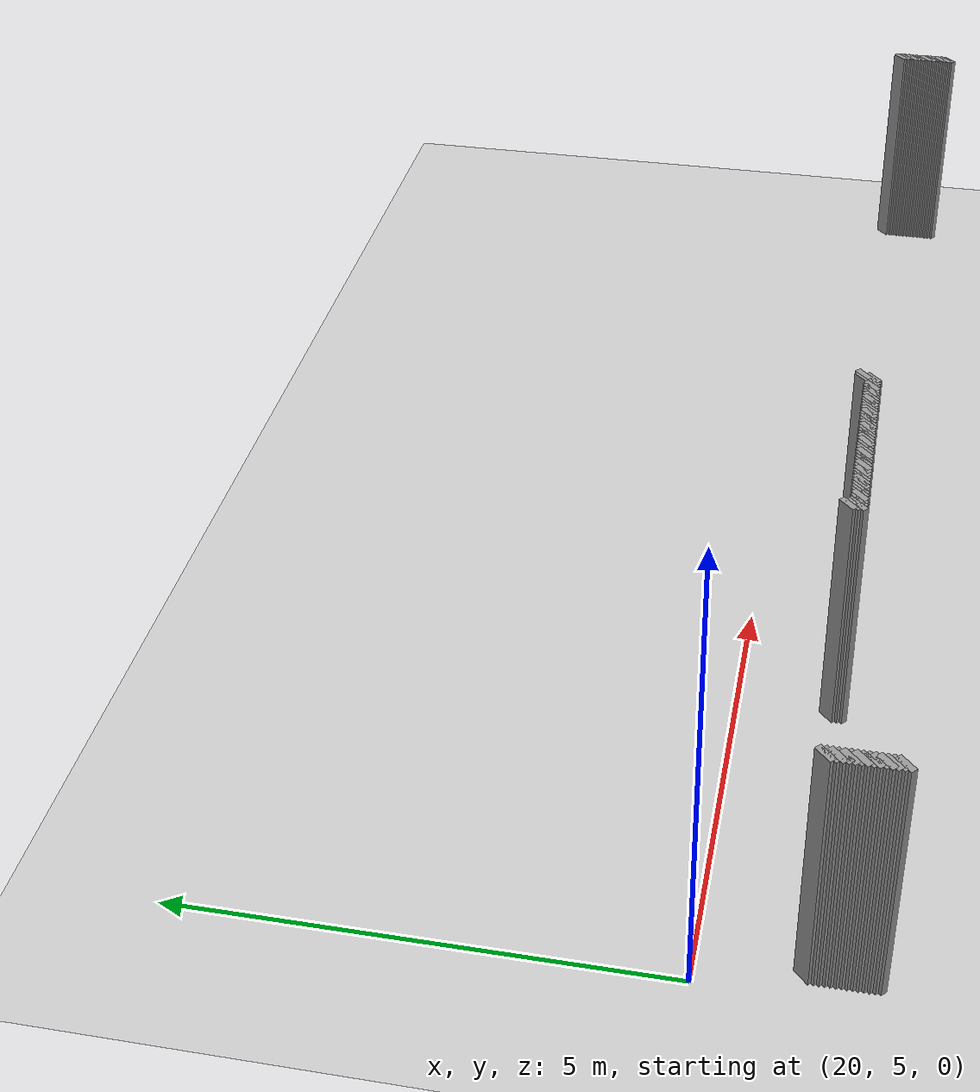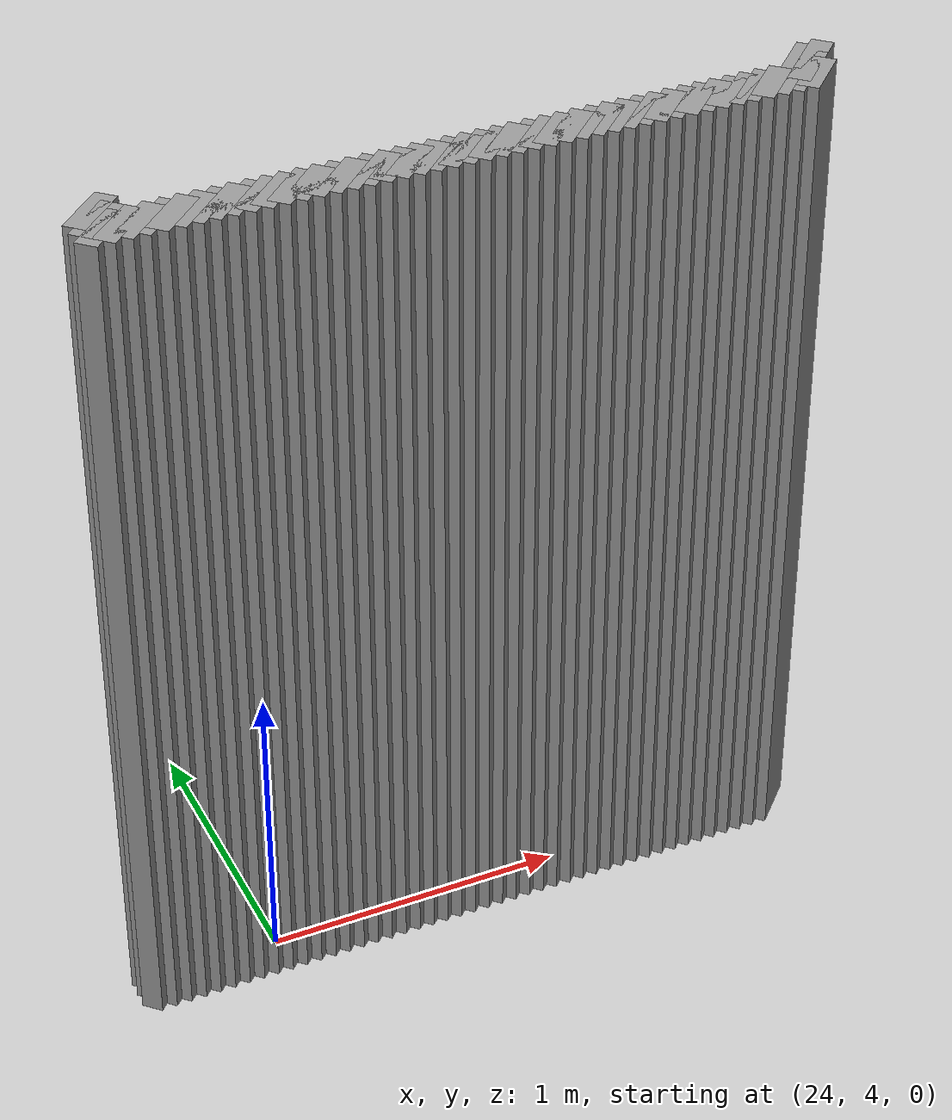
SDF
<sdf version="1.5">
 <world name="default">
  <include><uri>model://ground_plane</uri></include>
  <include><uri>model://sun</uri></include>
  <model name="grey_wall_4885">
   <static>1</static>
   <link name="link">
    <pose>23.6 4.05  1.4 0 0 -0.785398163397</pose>
    <collision name="collision"><geometry><box><size>0.0707106781187 .2  2.8</size></box></geometry></collision>
    <visual name="visual">
     <cast_shadows>0</cast_shadows>
     <geometry><box><size>0.0707106781187 .2  2.8</size></box></geometry>
     <material>
      <script>
       <uri>model://grey_wall/materials/scripts</uri>
       <uri>model://grey_wall/materials/textures</uri>
       <name>vrc/grey_wall</name>
      </script>
     </material>
    </visual>
   </link>
  </model>
  <model name="grey_wall_4886">
   <static>1</static>
   <link name="link">
    <pose>25.8 4.05  1.4 0 0 -0.785398163397</pose>
    <collision name="collision"><geometry><box><size>0.0707106781187 .2  2.8</size></box></geometry></collision>
    <visual name="visual">
     <cast_shadows>0</cast_shadows>
     <geometry><box><size>0.0707106781187 .2  2.8</size></box></geometry>
     <material>
      <script>
       <uri>model://grey_wall/materials/scripts</uri>
       <uri>model://grey_wall/materials/textures</uri>
       <name>vrc/grey_wall</name>
      </script>
     </material>
    </visual>
   </link>
  </model>
  <model name="grey_wall_4887">
   <static>1</static>
   <link name="link">
    <pose>25.85 4.05  1.4 0 0 -0.785398163397</pose>
    <collision name="collision"><geometry><box><size>0.0707106781187 .2  2.8</size></box></geometry></collision>
    <visual name="visual">
     <cast_shadows>0</cast_shadows>
     <geometry><box><size>0.0707106781187 .2  2.8</size></box></geometry>
     <material>
      <script>
       <uri>model://grey_wall/materials/scripts</uri>
       <uri>model://grey_wall/materials/textures</uri>
       <name>vrc/grey_wall</name>
      </script>
     </material>
    </visual>
   </link>
  </model>
  <model name="grey_wall_4888">
   <static>1</static>
   <link name="link">
    <pose>33.95 4.05  1.4 0 0 -0.785398163397</pose>
    <collision name="collision"><geometry><box><size>0.0707106781187 .2  2.8</size></box></geometry></collision>
    <visual name="visual">
     <cast_shadows>0</cast_shadows>
     <geometry><box><size>0.0707106781187 .2  2.8</size></box></geometry>
     <material>
      <script>
       <uri>model://grey_wall/materials/scripts</uri>
       <uri>model://grey_wall/materials/textures</uri>
       <name>vrc/grey_wall</name>
      </script>
     </material>
    </visual>
   </link>
  </model>
  <model name="grey_wall_4889">
   <static>1</static>
   <link name="link">
    <pose>20.25 4.0  1.4 0 0 -0.785398163397</pose>
    <collision name="collision"><geometry><box><size>0.0707106781187 .2  2.8</size></box></geometry></collision>
    <visual name="visual">
     <cast_shadows>0</cast_shadows>
     <geometry><box><size>0.0707106781187 .2  2.8</size></box></geometry>
     <material>
      <script>
       <uri>model://grey_wall/materials/scripts</uri>
       <uri>model://grey_wall/materials/textures</uri>
       <name>vrc/grey_wall</name>
      </script>
     </material>
    </visual>
   </link>
  </model>
  <model name="grey_wall_4890">
   <static>1</static>
   <link name="link">
    <pose>23.6 4.0  1.4 0 0 -0.785398163397</pose>
    <collision name="collision"><geometry><box><size>0.0707106781187 .2  2.8</size></box></geometry></collision>
    <visual name="visual">
     <cast_shadows>0</cast_shadows>
     <geometry><box><size>0.0707106781187 .2  2.8</size></box></geometry>
     <material>
      <script>
       <uri>model://grey_wall/materials/scripts</uri>
       <uri>model://grey_wall/materials/textures</uri>
       <name>vrc/grey_wall</name>
      </script>
     </material>
    </visual>
   </link>
  </model>
  <model name="grey_wall_4891">
   <static>1</static>
   <link name="link">
    <pose>25.8 4.0  1.4 0 0 -0.785398163397</pose>
    <collision name="collision"><geometry><box><size>0.0707106781187 .2  2.8</size></box></geometry></collision>
    <visual name="visual">
     <cast_shadows>0</cast_shadows>
     <geometry><box><size>0.0707106781187 .2  2.8</size></box></geometry>
     <material>
      <script>
       <uri>model://grey_wall/materials/scripts</uri>
       <uri>model://grey_wall/materials/textures</uri>
       <name>vrc/grey_wall</name>
      </script>
     </material>
    </visual>
   </link>
  </model>
  <model name="grey_wall_4892">
   <static>1</static>
   <link name="link">
    <pose>33.95 4.0  1.4 0 0 -0.785398163397</pose>
    <collision name="collision"><geometry><box><size>0.0707106781187 .2  2.8</size></box></geometry></collision>
    <visual name="visual">
     <cast_shadows>0</cast_shadows>
     <geometry><box><size>0.0707106781187 .2  2.8</size></box></geometry>
     <material>
      <script>
       <uri>model://grey_wall/materials/scripts</uri>
       <uri>model://grey_wall/materials/textures</uri>
       <name>vrc/grey_wall</name>
      </script>
     </material>
    </visual>
   </link>
  </model>
  <model name="grey_wall_4893">
   <static>1</static>
   <link name="link">
    <pose>20.25 3.95  1.4 0 0 -0.785398163397</pose>
    <collision name="collision"><geometry><box><size>0.0707106781187 .2  2.8</size></box></geometry></collision>
    <visual name="visual">
     <cast_shadows>0</cast_shadows>
     <geometry><box><size>0.0707106781187 .2  2.8</size></box></geometry>
     <material>
      <script>
       <uri>model://grey_wall/materials/scripts</uri>
       <uri>model://grey_wall/materials/textures</uri>
       <name>vrc/grey_wall</name>
      </script>
     </material>
    </visual>
   </link>
  </model>
  <model name="grey_wall_4894">
   <static>1</static>
   <link name="link">
    <pose>23.6 3.95  1.4 0 0 -0.785398163397</pose>
    <collision name="collision"><geometry><box><size>0.0707106781187 .2  2.8</size></box></geometry></collision>
    <visual name="visual">
     <cast_shadows>0</cast_shadows>
     <geometry><box><size>0.0707106781187 .2  2.8</size></box></geometry>
     <material>
      <script>
       <uri>model://grey_wall/materials/scripts</uri>
       <uri>model://grey_wall/materials/textures</uri>
       <name>vrc/grey_wall</name>
      </script>
     </material>
    </visual>
   </link>
  </model>
  <model name="grey_wall_4895">
   <static>1</static>
   <link name="link">
    <pose>23.65 3.95  1.4 0 0 -0.785398163397</pose>
    <collision name="collision"><geometry><box><size>0.0707106781187 .2  2.8</size></box></geometry></collision>
    <visual name="visual">
     <cast_shadows>0</cast_shadows>
     <geometry><box><size>0.0707106781187 .2  2.8</size></box></geometry>
     <material>
      <script>
       <uri>model://grey_wall/materials/scripts</uri>
       <uri>model://grey_wall/materials/textures</uri>
       <name>vrc/grey_wall</name>
      </script>
     </material>
    </visual>
   </link>
  </model>
  <model name="grey_wall_4896">
   <static>1</static>
   <link name="link">
    <pose>23.7 3.95  1.4 0 0 -0.785398163397</pose>
    <collision name="collision"><geometry><box><size>0.0707106781187 .2  2.8</size></box></geometry></collision>
    <visual name="visual">
     <cast_shadows>0</cast_shadows>
     <geometry><box><size>0.0707106781187 .2  2.8</size></box></geometry>
     <material>
      <script>
       <uri>model://grey_wall/materials/scripts</uri>
       <uri>model://grey_wall/materials/textures</uri>
       <name>vrc/grey_wall</name>
      </script>
     </material>
    </visual>
   </link>
  </model>
  <model name="grey_wall_4897">
   <static>1</static>
   <link name="link">
    <pose>23.75 3.95  1.4 0 0 -0.785398163397</pose>
    <collision name="collision"><geometry><box><size>0.0707106781187 .2  2.8</size></box></geometry></collision>
    <visual name="visual">
     <cast_shadows>0</cast_shadows>
     <geometry><box><size>0.0707106781187 .2  2.8</size></box></geometry>
     <material>
      <script>
       <uri>model://grey_wall/materials/scripts</uri>
       <uri>model://grey_wall/materials/textures</uri>
       <name>vrc/grey_wall</name>
      </script>
     </material>
    </visual>
   </link>
  </model>
  <model name="grey_wall_4898">
   <static>1</static>
   <link name="link">
    <pose>23.8 3.95  1.4 0 0 -0.785398163397</pose>
    <collision name="collision"><geometry><box><size>0.0707106781187 .2  2.8</size></box></geometry></collision>
    <visual name="visual">
     <cast_shadows>0</cast_shadows>
     <geometry><box><size>0.0707106781187 .2  2.8</size></box></geometry>
     <material>
      <script>
       <uri>model://grey_wall/materials/scripts</uri>
       <uri>model://grey_wall/materials/textures</uri>
       <name>vrc/grey_wall</name>
      </script>
     </material>
    </visual>
   </link>
  </model>
  <model name="grey_wall_4899">
   <static>1</static>
   <link name="link">
    <pose>23.85 3.95  1.4 0 0 -0.785398163397</pose>
    <collision name="collision"><geometry><box><size>0.0707106781187 .2  2.8</size></box></geometry></collision>
    <visual name="visual">
     <cast_shadows>0</cast_shadows>
     <geometry><box><size>0.0707106781187 .2  2.8</size></box></geometry>
     <material>
      <script>
       <uri>model://grey_wall/materials/scripts</uri>
       <uri>model://grey_wall/materials/textures</uri>
       <name>vrc/grey_wall</name>
      </script>
     </material>
    </visual>
   </link>
  </model>
  <model name="grey_wall_4900">
   <static>1</static>
   <link name="link">
    <pose>23.9 3.95  1.4 0 0 -0.785398163397</pose>
    <collision name="collision"><geometry><box><size>0.0707106781187 .2  2.8</size></box></geometry></collision>
    <visual name="visual">
     <cast_shadows>0</cast_shadows>
     <geometry><box><size>0.0707106781187 .2  2.8</size></box></geometry>
     <material>
      <script>
       <uri>model://grey_wall/materials/scripts</uri>
       <uri>model://grey_wall/materials/textures</uri>
       <name>vrc/grey_wall</name>
      </script>
     </material>
    </visual>
   </link>
  </model>
  <model name="grey_wall_4901">
   <static>1</static>
   <link name="link">
    <pose>23.95 3.95  1.4 0 0 -0.785398163397</pose>
    <collision name="collision"><geometry><box><size>0.0707106781187 .2  2.8</size></box></geometry></collision>
    <visual name="visual">
     <cast_shadows>0</cast_shadows>
     <geometry><box><size>0.0707106781187 .2  2.8</size></box></geometry>
     <material>
      <script>
       <uri>model://grey_wall/materials/scripts</uri>
       <uri>model://grey_wall/materials/textures</uri>
       <name>vrc/grey_wall</name>
      </script>
     </material>
    </visual>
   </link>
  </model>
  <model name="grey_wall_4902">
   <static>1</static>
   <link name="link">
    <pose>24.0 3.95  1.4 0 0 -0.785398163397</pose>
    <collision name="collision"><geometry><box><size>0.0707106781187 .2  2.8</size></box></geometry></collision>
    <visual name="visual">
     <cast_shadows>0</cast_shadows>
     <geometry><box><size>0.0707106781187 .2  2.8</size></box></geometry>
     <material>
      <script>
       <uri>model://grey_wall/materials/scripts</uri>
       <uri>model://grey_wall/materials/textures</uri>
       <name>vrc/grey_wall</name>
      </script>
     </material>
    </visual>
   </link>
  </model>
  <model name="grey_wall_4903">
   <static>1</static>
   <link name="link">
    <pose>24.05 3.95  1.4 0 0 -0.785398163397</pose>
    <collision name="collision"><geometry><box><size>0.0707106781187 .2  2.8</size></box></geometry></collision>
    <visual name="visual">
     <cast_shadows>0</cast_shadows>
     <geometry><box><size>0.0707106781187 .2  2.8</size></box></geometry>
     <material>
      <script>
       <uri>model://grey_wall/materials/scripts</uri>
       <uri>model://grey_wall/materials/textures</uri>
       <name>vrc/grey_wall</name>
      </script>
     </material>
    </visual>
   </link>
  </model>
  <model name="grey_wall_4904">
   <static>1</static>
   <link name="link">
    <pose>24.1 3.95  1.4 0 0 -0.785398163397</pose>
    <collision name="collision"><geometry><box><size>0.0707106781187 .2  2.8</size></box></geometry></collision>
    <visual name="visual">
     <cast_shadows>0</cast_shadows>
     <geometry><box><size>0.0707106781187 .2  2.8</size></box></geometry>
     <material>
      <script>
       <uri>model://grey_wall/materials/scripts</uri>
       <uri>model://grey_wall/materials/textures</uri>
       <name>vrc/grey_wall</name>
      </script>
     </material>
    </visual>
   </link>
  </model>
  <model name="grey_wall_4905">
   <static>1</static>
   <link name="link">
    <pose>24.15 3.95  1.4 0 0 -0.785398163397</pose>
    <collision name="collision"><geometry><box><size>0.0707106781187 .2  2.8</size></box></geometry></collision>
    <visual name="visual">
     <cast_shadows>0</cast_shadows>
     <geometry><box><size>0.0707106781187 .2  2.8</size></box></geometry>
     <material>
      <script>
       <uri>model://grey_wall/materials/scripts</uri>
       <uri>model://grey_wall/materials/textures</uri>
       <name>vrc/grey_wall</name>
      </script>
     </material>
    </visual>
   </link>
  </model>
  <model name="grey_wall_4906">
   <static>1</static>
   <link name="link">
    <pose>24.2 3.95  1.4 0 0 -0.785398163397</pose>
    <collision name="collision"><geometry><box><size>0.0707106781187 .2  2.8</size></box></geometry></collision>
    <visual name="visual">
     <cast_shadows>0</cast_shadows>
     <geometry><box><size>0.0707106781187 .2  2.8</size></box></geometry>
     <material>
      <script>
       <uri>model://grey_wall/materials/scripts</uri>
       <uri>model://grey_wall/materials/textures</uri>
       <name>vrc/grey_wall</name>
      </script>
     </material>
    </visual>
   </link>
  </model>
  <model name="grey_wall_4907">
   <static>1</static>
   <link name="link">
    <pose>24.25 3.95  1.4 0 0 -0.785398163397</pose>
    <collision name="collision"><geometry><box><size>0.0707106781187 .2  2.8</size></box></geometry></collision>
    <visual name="visual">
     <cast_shadows>0</cast_shadows>
     <geometry><box><size>0.0707106781187 .2  2.8</size></box></geometry>
     <material>
      <script>
       <uri>model://grey_wall/materials/scripts</uri>
       <uri>model://grey_wall/materials/textures</uri>
       <name>vrc/grey_wall</name>
      </script>
     </material>
    </visual>
   </link>
  </model>
  <model name="grey_wall_4908">
   <static>1</static>
   <link name="link">
    <pose>24.3 3.95  1.4 0 0 -0.785398163397</pose>
    <collision name="collision"><geometry><box><size>0.0707106781187 .2  2.8</size></box></geometry></collision>
    <visual name="visual">
     <cast_shadows>0</cast_shadows>
     <geometry><box><size>0.0707106781187 .2  2.8</size></box></geometry>
     <material>
      <script>
       <uri>model://grey_wall/materials/scripts</uri>
       <uri>model://grey_wall/materials/textures</uri>
       <name>vrc/grey_wall</name>
      </script>
     </material>
    </visual>
   </link>
  </model>
  <model name="grey_wall_4909">
   <static>1</static>
   <link name="link">
    <pose>24.35 3.95  1.4 0 0 -0.785398163397</pose>
    <collision name="collision"><geometry><box><size>0.0707106781187 .2  2.8</size></box></geometry></collision>
    <visual name="visual">
     <cast_shadows>0</cast_shadows>
     <geometry><box><size>0.0707106781187 .2  2.8</size></box></geometry>
     <material>
      <script>
       <uri>model://grey_wall/materials/scripts</uri>
       <uri>model://grey_wall/materials/textures</uri>
       <name>vrc/grey_wall</name>
      </script>
     </material>
    </visual>
   </link>
  </model>
  <model name="grey_wall_4910">
   <static>1</static>
   <link name="link">
    <pose>24.4 3.95  1.4 0 0 -0.785398163397</pose>
    <collision name="collision"><geometry><box><size>0.0707106781187 .2  2.8</size></box></geometry></collision>
    <visual name="visual">
     <cast_shadows>0</cast_shadows>
     <geometry><box><size>0.0707106781187 .2  2.8</size></box></geometry>
     <material>
      <script>
       <uri>model://grey_wall/materials/scripts</uri>
       <uri>model://grey_wall/materials/textures</uri>
       <name>vrc/grey_wall</name>
      </script>
     </material>
    </visual>
   </link>
  </model>
  <model name="grey_wall_4911">
   <static>1</static>
   <link name="link">
    <pose>24.45 3.95  1.4 0 0 -0.785398163397</pose>
    <collision name="collision"><geometry><box><size>0.0707106781187 .2  2.8</size></box></geometry></collision>
    <visual name="visual">
     <cast_shadows>0</cast_shadows>
     <geometry><box><size>0.0707106781187 .2  2.8</size></box></geometry>
     <material>
      <script>
       <uri>model://grey_wall/materials/scripts</uri>
       <uri>model://grey_wall/materials/textures</uri>
       <name>vrc/grey_wall</name>
      </script>
     </material>
    </visual>
   </link>
  </model>
  <model name="grey_wall_4912">
   <static>1</static>
   <link name="link">
    <pose>24.5 3.95  1.4 0 0 -0.785398163397</pose>
    <collision name="collision"><geometry><box><size>0.0707106781187 .2  2.8</size></box></geometry></collision>
    <visual name="visual">
     <cast_shadows>0</cast_shadows>
     <geometry><box><size>0.0707106781187 .2  2.8</size></box></geometry>
     <material>
      <script>
       <uri>model://grey_wall/materials/scripts</uri>
       <uri>model://grey_wall/materials/textures</uri>
       <name>vrc/grey_wall</name>
      </script>
     </material>
    </visual>
   </link>
  </model>
  <model name="grey_wall_4913">
   <static>1</static>
   <link name="link">
    <pose>24.55 3.95  1.4 0 0 -0.785398163397</pose>
    <collision name="collision"><geometry><box><size>0.0707106781187 .2  2.8</size></box></geometry></collision>
    <visual name="visual">
     <cast_shadows>0</cast_shadows>
     <geometry><box><size>0.0707106781187 .2  2.8</size></box></geometry>
     <material>
      <script>
       <uri>model://grey_wall/materials/scripts</uri>
       <uri>model://grey_wall/materials/textures</uri>
       <name>vrc/grey_wall</name>
      </script>
     </material>
    </visual>
   </link>
  </model>
  <model name="grey_wall_4914">
   <static>1</static>
   <link name="link">
    <pose>24.6 3.95  1.4 0 0 -0.785398163397</pose>
    <collision name="collision"><geometry><box><size>0.0707106781187 .2  2.8</size></box></geometry></collision>
    <visual name="visual">
     <cast_shadows>0</cast_shadows>
     <geometry><box><size>0.0707106781187 .2  2.8</size></box></geometry>
     <material>
      <script>
       <uri>model://grey_wall/materials/scripts</uri>
       <uri>model://grey_wall/materials/textures</uri>
       <name>vrc/grey_wall</name>
      </script>
     </material>
    </visual>
   </link>
  </model>
  <model name="grey_wall_4915">
   <static>1</static>
   <link name="link">
    <pose>24.65 3.95  1.4 0 0 -0.785398163397</pose>
    <collision name="collision"><geometry><box><size>0.0707106781187 .2  2.8</size></box></geometry></collision>
    <visual name="visual">
     <cast_shadows>0</cast_shadows>
     <geometry><box><size>0.0707106781187 .2  2.8</size></box></geometry>
     <material>
      <script>
       <uri>model://grey_wall/materials/scripts</uri>
       <uri>model://grey_wall/materials/textures</uri>
       <name>vrc/grey_wall</name>
      </script>
     </material>
    </visual>
   </link>
  </model>
  <model name="grey_wall_4916">
   <static>1</static>
   <link name="link">
    <pose>24.7 3.95  1.4 0 0 -0.785398163397</pose>
    <collision name="collision"><geometry><box><size>0.0707106781187 .2  2.8</size></box></geometry></collision>
    <visual name="visual">
     <cast_shadows>0</cast_shadows>
     <geometry><box><size>0.0707106781187 .2  2.8</size></box></geometry>
     <material>
      <script>
       <uri>model://grey_wall/materials/scripts</uri>
       <uri>model://grey_wall/materials/textures</uri>
       <name>vrc/grey_wall</name>
      </script>
     </material>
    </visual>
   </link>
  </model>
  <model name="grey_wall_4917">
   <static>1</static>
   <link name="link">
    <pose>24.75 3.95  1.4 0 0 -0.785398163397</pose>
    <collision name="collision"><geometry><box><size>0.0707106781187 .2  2.8</size></box></geometry></collision>
    <visual name="visual">
     <cast_shadows>0</cast_shadows>
     <geometry><box><size>0.0707106781187 .2  2.8</size></box></geometry>
     <material>
      <script>
       <uri>model://grey_wall/materials/scripts</uri>
       <uri>model://grey_wall/materials/textures</uri>
       <name>vrc/grey_wall</name>
      </script>
     </material>
    </visual>
   </link>
  </model>
  <model name="grey_wall_4918">
   <static>1</static>
   <link name="link">
    <pose>24.8 3.95  1.4 0 0 -0.785398163397</pose>
    <collision name="collision"><geometry><box><size>0.0707106781187 .2  2.8</size></box></geometry></collision>
    <visual name="visual">
     <cast_shadows>0</cast_shadows>
     <geometry><box><size>0.0707106781187 .2  2.8</size></box></geometry>
     <material>
      <script>
       <uri>model://grey_wall/materials/scripts</uri>
       <uri>model://grey_wall/materials/textures</uri>
       <name>vrc/grey_wall</name>
      </script>
     </material>
    </visual>
   </link>
  </model>
  <model name="grey_wall_4919">
   <static>1</static>
   <link name="link">
    <pose>24.85 3.95  1.4 0 0 -0.785398163397</pose>
    <collision name="collision"><geometry><box><size>0.0707106781187 .2  2.8</size></box></geometry></collision>
    <visual name="visual">
     <cast_shadows>0</cast_shadows>
     <geometry><box><size>0.0707106781187 .2  2.8</size></box></geometry>
     <material>
      <script>
       <uri>model://grey_wall/materials/scripts</uri>
       <uri>model://grey_wall/materials/textures</uri>
       <name>vrc/grey_wall</name>
      </script>
     </material>
    </visual>
   </link>
  </model>
  <model name="grey_wall_4920">
   <static>1</static>
   <link name="link">
    <pose>24.9 3.95  1.4 0 0 -0.785398163397</pose>
    <collision name="collision"><geometry><box><size>0.0707106781187 .2  2.8</size></box></geometry></collision>
    <visual name="visual">
     <cast_shadows>0</cast_shadows>
     <geometry><box><size>0.0707106781187 .2  2.8</size></box></geometry>
     <material>
      <script>
       <uri>model://grey_wall/materials/scripts</uri>
       <uri>model://grey_wall/materials/textures</uri>
       <name>vrc/grey_wall</name>
      </script>
     </material>
    </visual>
   </link>
  </model>
  <model name="grey_wall_4921">
   <static>1</static>
   <link name="link">
    <pose>24.95 3.95  1.4 0 0 -0.785398163397</pose>
    <collision name="collision"><geometry><box><size>0.0707106781187 .2  2.8</size></box></geometry></collision>
    <visual name="visual">
     <cast_shadows>0</cast_shadows>
     <geometry><box><size>0.0707106781187 .2  2.8</size></box></geometry>
     <material>
      <script>
       <uri>model://grey_wall/materials/scripts</uri>
       <uri>model://grey_wall/materials/textures</uri>
       <name>vrc/grey_wall</name>
      </script>
     </material>
    </visual>
   </link>
  </model>
  <model name="grey_wall_4922">
   <static>1</static>
   <link name="link">
    <pose>25.0 3.95  1.4 0 0 -0.785398163397</pose>
    <collision name="collision"><geometry><box><size>0.0707106781187 .2  2.8</size></box></geometry></collision>
    <visual name="visual">
     <cast_shadows>0</cast_shadows>
     <geometry><box><size>0.0707106781187 .2  2.8</size></box></geometry>
     <material>
      <script>
       <uri>model://grey_wall/materials/scripts</uri>
       <uri>model://grey_wall/materials/textures</uri>
       <name>vrc/grey_wall</name>
      </script>
     </material>
    </visual>
   </link>
  </model>
  <model name="grey_wall_4923">
   <static>1</static>
   <link name="link">
    <pose>25.05 3.95  1.4 0 0 -0.785398163397</pose>
    <collision name="collision"><geometry><box><size>0.0707106781187 .2  2.8</size></box></geometry></collision>
    <visual name="visual">
     <cast_shadows>0</cast_shadows>
     <geometry><box><size>0.0707106781187 .2  2.8</size></box></geometry>
     <material>
      <script>
       <uri>model://grey_wall/materials/scripts</uri>
       <uri>model://grey_wall/materials/textures</uri>
       <name>vrc/grey_wall</name>
      </script>
     </material>
    </visual>
   </link>
  </model>
  <model name="grey_wall_4924">
   <static>1</static>
   <link name="link">
    <pose>25.1 3.95  1.4 0 0 -0.785398163397</pose>
    <collision name="collision"><geometry><box><size>0.0707106781187 .2  2.8</size></box></geometry></collision>
    <visual name="visual">
     <cast_shadows>0</cast_shadows>
     <geometry><box><size>0.0707106781187 .2  2.8</size></box></geometry>
     <material>
      <script>
       <uri>model://grey_wall/materials/scripts</uri>
       <uri>model://grey_wall/materials/textures</uri>
       <name>vrc/grey_wall</name>
      </script>
     </material>
    </visual>
   </link>
  </model>
  <model name="grey_wall_4925">
   <static>1</static>
   <link name="link">
    <pose>25.15 3.95  1.4 0 0 -0.785398163397</pose>
    <collision name="collision"><geometry><box><size>0.0707106781187 .2  2.8</size></box></geometry></collision>
    <visual name="visual">
     <cast_shadows>0</cast_shadows>
     <geometry><box><size>0.0707106781187 .2  2.8</size></box></geometry>
     <material>
      <script>
       <uri>model://grey_wall/materials/scripts</uri>
       <uri>model://grey_wall/materials/textures</uri>
       <name>vrc/grey_wall</name>
      </script>
     </material>
    </visual>
   </link>
  </model>
  <model name="grey_wall_4926">
   <static>1</static>
   <link name="link">
    <pose>25.2 3.95  1.4 0 0 -0.785398163397</pose>
    <collision name="collision"><geometry><box><size>0.0707106781187 .2  2.8</size></box></geometry></collision>
    <visual name="visual">
     <cast_shadows>0</cast_shadows>
     <geometry><box><size>0.0707106781187 .2  2.8</size></box></geometry>
     <material>
      <script>
       <uri>model://grey_wall/materials/scripts</uri>
       <uri>model://grey_wall/materials/textures</uri>
       <name>vrc/grey_wall</name>
      </script>
     </material>
    </visual>
   </link>
  </model>
  <model name="grey_wall_4927">
   <static>1</static>
   <link name="link">
    <pose>25.25 3.95  1.4 0 0 -0.785398163397</pose>
    <collision name="collision"><geometry><box><size>0.0707106781187 .2  2.8</size></box></geometry></collision>
    <visual name="visual">
     <cast_shadows>0</cast_shadows>
     <geometry><box><size>0.0707106781187 .2  2.8</size></box></geometry>
     <material>
      <script>
       <uri>model://grey_wall/materials/scripts</uri>
       <uri>model://grey_wall/materials/textures</uri>
       <name>vrc/grey_wall</name>
      </script>
     </material>
    </visual>
   </link>
  </model>
  <model name="grey_wall_4928">
   <static>1</static>
   <link name="link">
    <pose>25.3 3.95  1.4 0 0 -0.785398163397</pose>
    <collision name="collision"><geometry><box><size>0.0707106781187 .2  2.8</size></box></geometry></collision>
    <visual name="visual">
     <cast_shadows>0</cast_shadows>
     <geometry><box><size>0.0707106781187 .2  2.8</size></box></geometry>
     <material>
      <script>
       <uri>model://grey_wall/materials/scripts</uri>
       <uri>model://grey_wall/materials/textures</uri>
       <name>vrc/grey_wall</name>
      </script>
     </material>
    </visual>
   </link>
  </model>
  <model name="grey_wall_4929">
   <static>1</static>
   <link name="link">
    <pose>25.35 3.95  1.4 0 0 -0.785398163397</pose>
    <collision name="collision"><geometry><box><size>0.0707106781187 .2  2.8</size></box></geometry></collision>
    <visual name="visual">
     <cast_shadows>0</cast_shadows>
     <geometry><box><size>0.0707106781187 .2  2.8</size></box></geometry>
     <material>
      <script>
       <uri>model://grey_wall/materials/scripts</uri>
       <uri>model://grey_wall/materials/textures</uri>
       <name>vrc/grey_wall</name>
      </script>
     </material>
    </visual>
   </link>
  </model>
  <model name="grey_wall_4930">
   <static>1</static>
   <link name="link">
    <pose>25.4 3.95  1.4 0 0 -0.785398163397</pose>
    <collision name="collision"><geometry><box><size>0.0707106781187 .2  2.8</size></box></geometry></collision>
    <visual name="visual">
     <cast_shadows>0</cast_shadows>
     <geometry><box><size>0.0707106781187 .2  2.8</size></box></geometry>
     <material>
      <script>
       <uri>model://grey_wall/materials/scripts</uri>
       <uri>model://grey_wall/materials/textures</uri>
       <name>vrc/grey_wall</name>
      </script>
     </material>
    </visual>
   </link>
  </model>
  <model name="grey_wall_4931">
   <static>1</static>
   <link name="link">
    <pose>25.45 3.95  1.4 0 0 -0.785398163397</pose>
    <collision name="collision"><geometry><box><size>0.0707106781187 .2  2.8</size></box></geometry></collision>
    <visual name="visual">
     <cast_shadows>0</cast_shadows>
     <geometry><box><size>0.0707106781187 .2  2.8</size></box></geometry>
     <material>
      <script>
       <uri>model://grey_wall/materials/scripts</uri>
       <uri>model://grey_wall/materials/textures</uri>
       <name>vrc/grey_wall</name>
      </script>
     </material>
    </visual>
   </link>
  </model>
  <model name="grey_wall_4932">
   <static>1</static>
   <link name="link">
    <pose>25.5 3.95  1.4 0 0 -0.785398163397</pose>
    <collision name="collision"><geometry><box><size>0.0707106781187 .2  2.8</size></box></geometry></collision>
    <visual name="visual">
     <cast_shadows>0</cast_shadows>
     <geometry><box><size>0.0707106781187 .2  2.8</size></box></geometry>
     <material>
      <script>
       <uri>model://grey_wall/materials/scripts</uri>
       <uri>model://grey_wall/materials/textures</uri>
       <name>vrc/grey_wall</name>
      </script>
     </material>
    </visual>
   </link>
  </model>
  <model name="grey_wall_4933">
   <static>1</static>
   <link name="link">
    <pose>25.55 3.95  1.4 0 0 -0.785398163397</pose>
    <collision name="collision"><geometry><box><size>0.0707106781187 .2  2.8</size></box></geometry></collision>
    <visual name="visual">
     <cast_shadows>0</cast_shadows>
     <geometry><box><size>0.0707106781187 .2  2.8</size></box></geometry>
     <material>
      <script>
       <uri>model://grey_wall/materials/scripts</uri>
       <uri>model://grey_wall/materials/textures</uri>
       <name>vrc/grey_wall</name>
      </script>
     </material>
    </visual>
   </link>
  </model>
  <model name="grey_wall_4934">
   <static>1</static>
   <link name="link">
    <pose>25.6 3.95  1.4 0 0 -0.785398163397</pose>
    <collision name="collision"><geometry><box><size>0.0707106781187 .2  2.8</size></box></geometry></collision>
    <visual name="visual">
     <cast_shadows>0</cast_shadows>
     <geometry><box><size>0.0707106781187 .2  2.8</size></box></geometry>
     <material>
      <script>
       <uri>model://grey_wall/materials/scripts</uri>
       <uri>model://grey_wall/materials/textures</uri>
       <name>vrc/grey_wall</name>
      </script>
     </material>
    </visual>
   </link>
  </model>
  <model name="grey_wall_4935">
   <static>1</static>
   <link name="link">
    <pose>25.65 3.95  1.4 0 0 -0.785398163397</pose>
    <collision name="collision"><geometry><box><size>0.0707106781187 .2  2.8</size></box></geometry></collision>
    <visual name="visual">
     <cast_shadows>0</cast_shadows>
     <geometry><box><size>0.0707106781187 .2  2.8</size></box></geometry>
     <material>
      <script>
       <uri>model://grey_wall/materials/scripts</uri>
       <uri>model://grey_wall/materials/textures</uri>
       <name>vrc/grey_wall</name>
      </script>
     </material>
    </visual>
   </link>
  </model>
  <model name="grey_wall_4936">
   <static>1</static>
   <link name="link">
    <pose>25.7 3.95  1.4 0 0 -0.785398163397</pose>
    <collision name="collision"><geometry><box><size>0.0707106781187 .2  2.8</size></box></geometry></collision>
    <visual name="visual">
     <cast_shadows>0</cast_shadows>
     <geometry><box><size>0.0707106781187 .2  2.8</size></box></geometry>
     <material>
      <script>
       <uri>model://grey_wall/materials/scripts</uri>
       <uri>model://grey_wall/materials/textures</uri>
       <name>vrc/grey_wall</name>
      </script>
     </material>
    </visual>
   </link>
  </model>
  <model name="grey_wall_4937">
   <static>1</static>
   <link name="link">
    <pose>25.75 3.95  1.4 0 0 -0.785398163397</pose>
    <collision name="collision"><geometry><box><size>0.0707106781187 .2  2.8</size></box></geometry></collision>
    <visual name="visual">
     <cast_shadows>0</cast_shadows>
     <geometry><box><size>0.0707106781187 .2  2.8</size></box></geometry>
     <material>
      <script>
       <uri>model://grey_wall/materials/scripts</uri>
       <uri>model://grey_wall/materials/textures</uri>
       <name>vrc/grey_wall</name>
      </script>
     </material>
    </visual>
   </link>
  </model>
  <model name="grey_wall_4938">
   <static>1</static>
   <link name="link">
    <pose>25.8 3.95  1.4 0 0 -0.785398163397</pose>
    <collision name="collision"><geometry><box><size>0.0707106781187 .2  2.8</size></box></geometry></collision>
    <visual name="visual">
     <cast_shadows>0</cast_shadows>
     <geometry><box><size>0.0707106781187 .2  2.8</size></box></geometry>
     <material>
      <script>
       <uri>model://grey_wall/materials/scripts</uri>
       <uri>model://grey_wall/materials/textures</uri>
       <name>vrc/grey_wall</name>
      </script>
     </material>
    </visual>
   </link>
  </model>
  <model name="grey_wall_4939">
   <static>1</static>
   <link name="link">
    <pose>33.95 3.95  1.4 0 0 -0.785398163397</pose>
    <collision name="collision"><geometry><box><size>0.0707106781187 .2  2.8</size></box></geometry></collision>
    <visual name="visual">
     <cast_shadows>0</cast_shadows>
     <geometry><box><size>0.0707106781187 .2  2.8</size></box></geometry>
     <material>
      <script>
       <uri>model://grey_wall/materials/scripts</uri>
       <uri>model://grey_wall/materials/textures</uri>
       <name>vrc/grey_wall</name>
      </script>
     </material>
    </visual>
   </link>
  </model>
  <model name="grey_wall_4940">
   <static>1</static>
   <link name="link">
    <pose>20.25 3.9  1.4 0 0 -0.785398163397</pose>
    <collision name="collision"><geometry><box><size>0.0707106781187 .2  2.8</size></box></geometry></collision>
    <visual name="visual">
     <cast_shadows>0</cast_shadows>
     <geometry><box><size>0.0707106781187 .2  2.8</size></box></geometry>
     <material>
      <script>
       <uri>model://grey_wall/materials/scripts</uri>
       <uri>model://grey_wall/materials/textures</uri>
       <name>vrc/grey_wall</name>
      </script>
     </material>
    </visual>
   </link>
  </model>
  <model name="grey_wall_4941">
   <static>1</static>
   <link name="link">
    <pose>33.95 3.9  1.4 0 0 -0.785398163397</pose>
    <collision name="collision"><geometry><box><size>0.0707106781187 .2  2.8</size></box></geometry></collision>
    <visual name="visual">
     <cast_shadows>0</cast_shadows>
     <geometry><box><size>0.0707106781187 .2  2.8</size></box></geometry>
     <material>
      <script>
       <uri>model://grey_wall/materials/scripts</uri>
       <uri>model://grey_wall/materials/textures</uri>
       <name>vrc/grey_wall</name>
      </script>
     </material>
    </visual>
   </link>
  </model>
  <model name="grey_wall_4942">
   <static>1</static>
   <link name="link">
    <pose>20.25 3.85  1.4 0 0 -0.785398163397</pose>
    <collision name="collision"><geometry><box><size>0.0707106781187 .2  2.8</size></box></geometry></collision>
    <visual name="visual">
     <cast_shadows>0</cast_shadows>
     <geometry><box><size>0.0707106781187 .2  2.8</size></box></geometry>
     <material>
      <script>
       <uri>model://grey_wall/materials/scripts</uri>
       <uri>model://grey_wall/materials/textures</uri>
       <name>vrc/grey_wall</name>
      </script>
     </material>
    </visual>
   </link>
  </model>
  <model name="grey_wall_4943">
   <static>1</static>
   <link name="link">
    <pose>33.95 3.85  1.4 0 0 -0.785398163397</pose>
    <collision name="collision"><geometry><box><size>0.0707106781187 .2  2.8</size></box></geometry></collision>
    <visual name="visual">
     <cast_shadows>0</cast_shadows>
     <geometry><box><size>0.0707106781187 .2  2.8</size></box></geometry>
     <material>
      <script>
       <uri>model://grey_wall/materials/scripts</uri>
       <uri>model://grey_wall/materials/textures</uri>
       <name>vrc/grey_wall</name>
      </script>
     </material>
    </visual>
   </link>
  </model>
  <model name="grey_wall_4944">
   <static>1</static>
   <link name="link">
    <pose>20.25 3.8  1.4 0 0 -0.785398163397</pose>
    <collision name="collision"><geometry><box><size>0.0707106781187 .2  2.8</size></box></geometry></collision>
    <visual name="visual">
     <cast_shadows>0</cast_shadows>
     <geometry><box><size>0.0707106781187 .2  2.8</size></box></geometry>
     <material>
      <script>
       <uri>model://grey_wall/materials/scripts</uri>
       <uri>model://grey_wall/materials/textures</uri>
       <name>vrc/grey_wall</name>
      </script>
     </material>
    </visual>
   </link>
  </model>
  <model name="grey_wall_4945">
   <static>1</static>
   <link name="link">
    <pose>33.95 3.8  1.4 0 0 -0.785398163397</pose>
    <collision name="collision"><geometry><box><size>0.0707106781187 .2  2.8</size></box></geometry></collision>
    <visual name="visual">
     <cast_shadows>0</cast_shadows>
     <geometry><box><size>0.0707106781187 .2  2.8</size></box></geometry>
     <material>
      <script>
       <uri>model://grey_wall/materials/scripts</uri>
       <uri>model://grey_wall/materials/textures</uri>
       <name>vrc/grey_wall</name>
      </script>
     </material>
    </visual>
   </link>
  </model>
  <model name="grey_wall_4946">
   <static>1</static>
   <link name="link">
    <pose>20.25 3.75  1.4 0 0 -0.785398163397</pose>
    <collision name="collision"><geometry><box><size>0.0707106781187 .2  2.8</size></box></geometry></collision>
    <visual name="visual">
     <cast_shadows>0</cast_shadows>
     <geometry><box><size>0.0707106781187 .2  2.8</size></box></geometry>
     <material>
      <script>
       <uri>model://grey_wall/materials/scripts</uri>
       <uri>model://grey_wall/materials/textures</uri>
       <name>vrc/grey_wall</name>
      </script>
     </material>
    </visual>
   </link>
  </model>
  <model name="grey_wall_4947">
   <static>1</static>
   <link name="link">
    <pose>33.95 3.75  1.4 0 0 -0.785398163397</pose>
    <collision name="collision"><geometry><box><size>0.0707106781187 .2  2.8</size></box></geometry></collision>
    <visual name="visual">
     <cast_shadows>0</cast_shadows>
     <geometry><box><size>0.0707106781187 .2  2.8</size></box></geometry>
     <material>
      <script>
       <uri>model://grey_wall/materials/scripts</uri>
       <uri>model://grey_wall/materials/textures</uri>
       <name>vrc/grey_wall</name>
      </script>
     </material>
    </visual>
   </link>
  </model>
  <model name="grey_wall_4948">
   <static>1</static>
   <link name="link">
    <pose>20.25 3.7  1.4 0 0 -0.785398163397</pose>
    <collision name="collision"><geometry><box><size>0.0707106781187 .2  2.8</size></box></geometry></collision>
    <visual name="visual">
     <cast_shadows>0</cast_shadows>
     <geometry><box><size>0.0707106781187 .2  2.8</size></box></geometry>
     <material>
      <script>
       <uri>model://grey_wall/materials/scripts</uri>
       <uri>model://grey_wall/materials/textures</uri>
       <name>vrc/grey_wall</name>
      </script>
     </material>
    </visual>
   </link>
  </model>
  <model name="grey_wall_4949">
   <static>1</static>
   <link name="link">
    <pose>33.95 3.7  1.4 0 0 -0.785398163397</pose>
    <collision name="collision"><geometry><box><size>0.0707106781187 .2  2.8</size></box></geometry></collision>
    <visual name="visual">
     <cast_shadows>0</cast_shadows>
     <geometry><box><size>0.0707106781187 .2  2.8</size></box></geometry>
     <material>
      <script>
       <uri>model://grey_wall/materials/scripts</uri>
       <uri>model://grey_wall/materials/textures</uri>
       <name>vrc/grey_wall</name>
      </script>
     </material>
    </visual>
   </link>
  </model>
  <model name="grey_wall_4950">
   <static>1</static>
   <link name="link">
    <pose>20.25 3.65  1.4 0 0 -0.785398163397</pose>
    <collision name="collision"><geometry><box><size>0.0707106781187 .2  2.8</size></box></geometry></collision>
    <visual name="visual">
     <cast_shadows>0</cast_shadows>
     <geometry><box><size>0.0707106781187 .2  2.8</size></box></geometry>
     <material>
      <script>
       <uri>model://grey_wall/materials/scripts</uri>
       <uri>model://grey_wall/materials/textures</uri>
       <name>vrc/grey_wall</name>
      </script>
     </material>
    </visual>
   </link>
  </model>
  <model name="grey_wall_4951">
   <static>1</static>
   <link name="link">
    <pose>33.95 3.65  1.4 0 0 -0.785398163397</pose>
    <collision name="collision"><geometry><box><size>0.0707106781187 .2  2.8</size></box></geometry></collision>
    <visual name="visual">
     <cast_shadows>0</cast_shadows>
     <geometry><box><size>0.0707106781187 .2  2.8</size></box></geometry>
     <material>
      <script>
       <uri>model://grey_wall/materials/scripts</uri>
       <uri>model://grey_wall/materials/textures</uri>
       <name>vrc/grey_wall</name>
      </script>
     </material>
    </visual>
   </link>
  </model>
  <model name="grey_wall_4952">
   <static>1</static>
   <link name="link">
    <pose>20.25 3.6  1.4 0 0 -0.785398163397</pose>
    <collision name="collision"><geometry><box><size>0.0707106781187 .2  2.8</size></box></geometry></collision>
    <visual name="visual">
     <cast_shadows>0</cast_shadows>
     <geometry><box><size>0.0707106781187 .2  2.8</size></box></geometry>
     <material>
      <script>
       <uri>model://grey_wall/materials/scripts</uri>
       <uri>model://grey_wall/materials/textures</uri>
       <name>vrc/grey_wall</name>
      </script>
     </material>
    </visual>
   </link>
  </model>
  <model name="grey_wall_4953">
   <static>1</static>
   <link name="link">
    <pose>33.95 3.6  1.4 0 0 -0.785398163397</pose>
    <collision name="collision"><geometry><box><size>0.0707106781187 .2  2.8</size></box></geometry></collision>
    <visual name="visual">
     <cast_shadows>0</cast_shadows>
     <geometry><box><size>0.0707106781187 .2  2.8</size></box></geometry>
     <material>
      <script>
       <uri>model://grey_wall/materials/scripts</uri>
       <uri>model://grey_wall/materials/textures</uri>
       <name>vrc/grey_wall</name>
      </script>
     </material>
    </visual>
   </link>
  </model>
  <model name="grey_wall_4954">
   <static>1</static>
   <link name="link">
    <pose>20.25 3.55  1.4 0 0 -0.785398163397</pose>
    <collision name="collision"><geometry><box><size>0.0707106781187 .2  2.8</size></box></geometry></collision>
    <visual name="visual">
     <cast_shadows>0</cast_shadows>
     <geometry><box><size>0.0707106781187 .2  2.8</size></box></geometry>
     <material>
      <script>
       <uri>model://grey_wall/materials/scripts</uri>
       <uri>model://grey_wall/materials/textures</uri>
       <name>vrc/grey_wall</name>
      </script>
     </material>
    </visual>
   </link>
  </model>
  <model name="grey_wall_4955">
   <static>1</static>
   <link name="link">
    <pose>33.95 3.55  1.4 0 0 -0.785398163397</pose>
    <collision name="collision"><geometry><box><size>0.0707106781187 .2  2.8</size></box></geometry></collision>
    <visual name="visual">
     <cast_shadows>0</cast_shadows>
     <geometry><box><size>0.0707106781187 .2  2.8</size></box></geometry>
     <material>
      <script>
       <uri>model://grey_wall/materials/scripts</uri>
       <uri>model://grey_wall/materials/textures</uri>
       <name>vrc/grey_wall</name>
      </script>
     </material>
    </visual>
   </link>
  </model>
  <model name="grey_wall_4956">
   <static>1</static>
   <link name="link">
    <pose>20.25 3.5  1.4 0 0 -0.785398163397</pose>
    <collision name="collision"><geometry><box><size>0.0707106781187 .2  2.8</size></box></geometry></collision>
    <visual name="visual">
     <cast_shadows>0</cast_shadows>
     <geometry><box><size>0.0707106781187 .2  2.8</size></box></geometry>
     <material>
      <script>
       <uri>model://grey_wall/materials/scripts</uri>
       <uri>model://grey_wall/materials/textures</uri>
       <name>vrc/grey_wall</name>
      </script>
     </material>
    </visual>
   </link>
  </model>
  <model name="grey_wall_4957">
   <static>1</static>
   <link name="link">
    <pose>33.95 3.5  1.4 0 0 -0.785398163397</pose>
    <collision name="collision"><geometry><box><size>0.0707106781187 .2  2.8</size></box></geometry></collision>
    <visual name="visual">
     <cast_shadows>0</cast_shadows>
     <geometry><box><size>0.0707106781187 .2  2.8</size></box></geometry>
     <material>
      <script>
       <uri>model://grey_wall/materials/scripts</uri>
       <uri>model://grey_wall/materials/textures</uri>
       <name>vrc/grey_wall</name>
      </script>
     </material>
    </visual>
   </link>
  </model>
  <model name="grey_wall_4958">
   <static>1</static>
   <link name="link">
    <pose>20.25 3.45  1.4 0 0 -0.785398163397</pose>
    <collision name="collision"><geometry><box><size>0.0707106781187 .2  2.8</size></box></geometry></collision>
    <visual name="visual">
     <cast_shadows>0</cast_shadows>
     <geometry><box><size>0.0707106781187 .2  2.8</size></box></geometry>
     <material>
      <script>
       <uri>model://grey_wall/materials/scripts</uri>
       <uri>model://grey_wall/materials/textures</uri>
       <name>vrc/grey_wall</name>
      </script>
     </material>
    </visual>
   </link>
  </model>
  <model name="grey_wall_4959">
   <static>1</static>
   <link name="link">
    <pose>33.95 3.45  1.4 0 0 -0.785398163397</pose>
    <collision name="collision"><geometry><box><size>0.0707106781187 .2  2.8</size></box></geometry></collision>
    <visual name="visual">
     <cast_shadows>0</cast_shadows>
     <geometry><box><size>0.0707106781187 .2  2.8</size></box></geometry>
     <material>
      <script>
       <uri>model://grey_wall/materials/scripts</uri>
       <uri>model://grey_wall/materials/textures</uri>
       <name>vrc/grey_wall</name>
      </script>
     </material>
    </visual>
   </link>
  </model>
  <model name="grey_wall_4960">
   <static>1</static>
   <link name="link">
    <pose>20.25 3.4  1.4 0 0 -0.785398163397</pose>
    <collision name="collision"><geometry><box><size>0.0707106781187 .2  2.8</size></box></geometry></collision>
    <visual name="visual">
     <cast_shadows>0</cast_shadows>
     <geometry><box><size>0.0707106781187 .2  2.8</size></box></geometry>
     <material>
      <script>
       <uri>model://grey_wall/materials/scripts</uri>
       <uri>model://grey_wall/materials/textures</uri>
       <name>vrc/grey_wall</name>
      </script>
     </material>
    </visual>
   </link>
  </model>
  <model name="grey_wall_4961">
   <static>1</static>
   <link name="link">
    <pose>33.95 3.4  1.4 0 0 -0.785398163397</pose>
    <collision name="collision"><geometry><box><size>0.0707106781187 .2  2.8</size></box></geometry></collision>
    <visual name="visual">
     <cast_shadows>0</cast_shadows>
     <geometry><box><size>0.0707106781187 .2  2.8</size></box></geometry>
     <material>
      <script>
       <uri>model://grey_wall/materials/scripts</uri>
       <uri>model://grey_wall/materials/textures</uri>
       <name>vrc/grey_wall</name>
      </script>
     </material>
    </visual>
   </link>
  </model>
  <model name="grey_wall_4962">
   <static>1</static>
   <link name="link">
    <pose>20.25 3.35  1.4 0 0 -0.785398163397</pose>
    <collision name="collision"><geometry><box><size>0.0707106781187 .2  2.8</size></box></geometry></collision>
    <visual name="visual">
     <cast_shadows>0</cast_shadows>
     <geometry><box><size>0.0707106781187 .2  2.8</size></box></geometry>
     <material>
      <script>
       <uri>model://grey_wall/materials/scripts</uri>
       <uri>model://grey_wall/materials/textures</uri>
       <name>vrc/grey_wall</name>
      </script>
     </material>
    </visual>
   </link>
  </model>
 </world>
</sdf>
